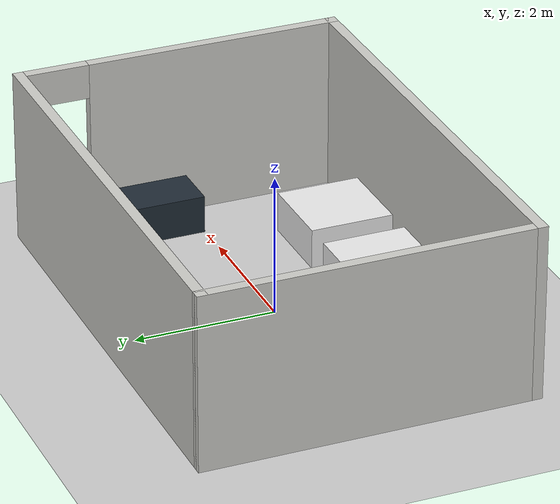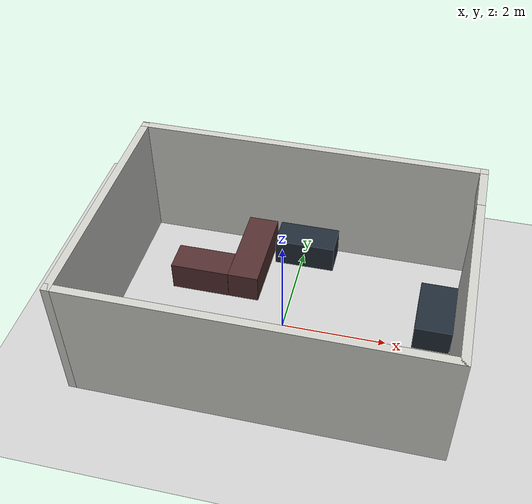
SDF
<sdf version="1.7">
 <world name="default">
  <light name="sun" type="directional">
   <pose>0 0 10 0 -0 0</pose>
   <diffuse>0.8 0.8 0.8 1</diffuse>
   <specular>0.2 0.2 0.2 1</specular>
   <attenuation>
    <range>1000</range>
    <constant>0.9</constant>
    <linear>0.01</linear>
    <quadratic>0.001</quadratic>
   </attenuation>
   <direction>-0.5 0.1 -0.9</direction>
   <spot><inner_angle>0</inner_angle><outer_angle>0</outer_angle><falloff>0</falloff></spot>
  </light>
  <model name="ground_plane">
   <static>1</static>
   <link name="link">
    <collision name="collision">
     <geometry><plane><normal>0 0 1</normal><size>100 100</size></plane></geometry>
     <surface><friction><ode><mu>100</mu><mu2>50</mu2></ode></friction></surface>
    </collision>
    <visual name="visual">
     <cast_shadows>0</cast_shadows>
     <geometry><plane><normal>0 0 1</normal><size>100 100</size></plane></geometry>
     <material>
      <script><uri>file://media/materials/scripts/gazebo.material</uri><name>Gazebo/Grey</name></script>
     </material>
    </visual>
   </link>
  </model>
  <gravity>0 0 -9.8</gravity>
  <magnetic_field>6e-06 2.3e-05 -4.2e-05</magnetic_field>
  <atmosphere type="adiabatic"/>
  <physics type="ode">
   <max_step_size>0.001</max_step_size>
   <real_time_factor>1</real_time_factor>
   <real_time_update_rate>1000</real_time_update_rate>
  </physics>
  <scene><ambient>0.4 0.4 0.4 1</ambient><background>0.7 0.7 0.7 1</background><shadows>1</shadows></scene>
  <audio><device>default</device></audio>
  <spherical_coordinates>
   <surface_model>EARTH_WGS84</surface_model>
   <latitude_deg>0</latitude_deg>
   <longitude_deg>0</longitude_deg>
   <elevation>0</elevation>
   <heading_deg>0</heading_deg>
  </spherical_coordinates>
  <model name="Lab_walls">
   <pose>-0.03036 0.6577 0 0 -0 0</pose>
   <link name="Wall_3">
    <collision name="Wall_3_Collision">
     <geometry><box><size>6.75 0.15 2.5</size></box></geometry>
     <pose>0 0 1.25 0 -0 0</pose>
    </collision>
    <visual name="Wall_3_Visual">
     <pose>0 0 1.25 0 -0 0</pose>
     <geometry><box><size>6.75 0.15 2.5</size></box></geometry>
     <material>
      <script><uri>file://media/materials/scripts/gazebo.material</uri><name>Gazebo/CeilingTiled</name></script>
      <ambient>1 1 1 1</ambient>
     </material>
     <meta><layer>0</layer></meta>
    </visual>
    <pose>-0 1.7225 0 0 -0 0</pose>
   </link>
   <link name="Wall_7">
    <pose>3.3 -0.5775 0 0 -0 -1.5708</pose>
    <visual name="Wall_7_Visual_0">
     <pose>-2.3005 0 1.25 0 -0 0</pose>
     <geometry><box><size>0.148992 0.15 2.5</size></box></geometry>
     <material>
      <script><uri>file://media/materials/scripts/gazebo.material</uri><name>Gazebo/CeilingTiled</name></script>
      <ambient>1 1 1 1</ambient>
     </material>
     <meta><layer>0</layer></meta>
    </visual>
    <collision name="Wall_7_Collision_0">
     <geometry><box><size>0.148992 0.15 2.5</size></box></geometry>
     <pose>-2.3005 0 1.25 0 -0 0</pose>
    </collision>
    <visual name="Wall_7_Visual_1">
     <pose>0.524496 0 1.25 0 -0 0</pose>
     <geometry><box><size>3.70101 0.15 2.5</size></box></geometry>
     <material>
      <script><uri>file://media/materials/scripts/gazebo.material</uri><name>Gazebo/CeilingTiled</name></script>
      <ambient>1 1 1 1</ambient>
     </material>
     <meta><layer>0</layer></meta>
    </visual>
    <collision name="Wall_7_Collision_1">
     <geometry><box><size>3.70101 0.15 2.5</size></box></geometry>
     <pose>0.524496 0 1.25 0 -0 0</pose>
    </collision>
    <visual name="Wall_7_Visual_2">
     <pose>-1.77601 0 2.25 0 -0 0</pose>
     <geometry><box><size>0.9 0.15 0.5</size></box></geometry>
     <material>
      <script><uri>file://media/materials/scripts/gazebo.material</uri><name>Gazebo/CeilingTiled</name></script>
      <ambient>1 1 1 1</ambient>
     </material>
     <meta><layer>0</layer></meta>
    </visual>
    <collision name="Wall_7_Collision_2">
     <geometry><box><size>0.9 0.15 0.5</size></box></geometry>
     <pose>-1.77601 0 2.25 0 -0 0</pose>
    </collision>
   </link>
   <link name="Wall_8">
    <collision name="Wall_8_Collision">
     <geometry><box><size>6.75 0.15 2.5</size></box></geometry>
     <pose>0 0 1.25 0 -0 0</pose>
    </collision>
    <visual name="Wall_8_Visual">
     <pose>0 0 1.25 0 -0 0</pose>
     <geometry><box><size>6.75 0.15 2.5</size></box></geometry>
     <material>
      <script><uri>file://media/materials/scripts/gazebo.material</uri><name>Gazebo/CeilingTiled</name></script>
      <ambient>1 1 1 1</ambient>
     </material>
     <meta><layer>0</layer></meta>
    </visual>
    <pose>-0 -2.8775 0 0 -0 3.14159</pose>
   </link>
   <link name="Wall_9">
    <collision name="Wall_9_Collision">
     <geometry><box><size>4.75 0.15 2.5</size></box></geometry>
     <pose>0 0 1.25 0 -0 0</pose>
    </collision>
    <visual name="Wall_9_Visual">
     <pose>0 0 1.25 0 -0 0</pose>
     <geometry><box><size>4.75 0.15 2.5</size></box></geometry>
     <material>
      <script><uri>file://media/materials/scripts/gazebo.material</uri><name>Gazebo/CeilingTiled</name></script>
      <ambient>1 1 1 1</ambient>
     </material>
     <meta><layer>0</layer></meta>
    </visual>
    <pose>-3.3 -0.5775 0 0 -0 1.5708</pose>
   </link>
   <static>1</static>
  </model>
  <model name="unit_box">
   <pose>2.82971 0.616669 0.274344 0 -0 0.000219</pose>
   <static>1</static>
   <link name="link">
    <inertial>
     <mass>1</mass>
     <inertia>
      <ixx>0.166667</ixx>
      <ixy>0</ixy>
      <ixz>0</ixz>
      <iyy>0.166667</iyy>
      <iyz>0</iyz>
      <izz>0.166667</izz>
     </inertia>
    </inertial>
    <collision name="collision"><geometry><box><size>0.7 1.2 0.548688</size></box></geometry></collision>
    <visual name="visual">
     <geometry><box><size>0.7 1.2 0.548688</size></box></geometry>
     <material>
      <ambient>0.124 0.169 0.211</ambient>
      <diffuse>0.124 0.169 0.211</diffuse>
      <specular>0.1 0.1 0.1 1.0</specular>
      <emissive>0.0 0.0 0.0 1.0</emissive>
      <texture><diffuse>file://media/materials/textures/flat_white.png</diffuse></texture>
     </material>
    </visual>
   </link>
  </model>
  <model name="unit_box_clone">
   <pose>1.54894 -1.538149 0.274344 0 -0 0.000219</pose>
   <static>1</static>
   <link name="link">
    <inertial>
     <mass>1</mass>
     <inertia>
      <ixx>0.166667</ixx>
      <ixy>0</ixy>
      <ixz>0</ixz>
      <iyy>0.166667</iyy>
      <iyz>0</iyz>
      <izz>0.166667</izz>
     </inertia>
    </inertial>
    <collision name="collision"><geometry><box><size>1.2 1.2 0.6</size></box></geometry></collision>
    <visual name="visual">
     <geometry><box><size>1.2 1.2 0.6</size></box></geometry>
     <material>
      <script><name>Gazebo/White</name><uri>file://media/materials/scripts/gazebo.material</uri></script>
     </material>
    </visual>
   </link>
  </model>
  <model name="unit_box_clone_clone">
   <static>1</static>
   <pose>-0.036658 -1.538149 0.274344 0 -0 0.000219</pose>
   <link name="link">
    <inertial>
     <mass>1</mass>
     <inertia>
      <ixx>0.166667</ixx>
      <ixy>0</ixy>
      <ixz>0</ixz>
      <iyy>0.166667</iyy>
      <iyz>0</iyz>
      <izz>0.166667</izz>
     </inertia>
    </inertial>
    <collision name="collision"><geometry><box><size>1.2 1.2 0.6</size></box></geometry></collision>
    <visual name="visual">
     <geometry><box><size>1.2 1.2 0.6</size></box></geometry>
     <material>
      <script><name>Gazebo/White</name><uri>file://media/materials/scripts/gazebo.material</uri></script>
     </material>
    </visual>
   </link>
  </model>
  <model name="unit_box_clone_0">
   <pose>-1.719810 -1.391033 0.274344 0 -0 0.000219</pose>
   <static>1</static>
   <link name="link">
    <inertial>
     <mass>1</mass>
     <inertia>
      <ixx>0.166667</ixx>
      <ixy>0</ixy>
      <ixz>0</ixz>
      <iyy>0.166667</iyy>
      <iyz>0</iyz>
      <izz>0.166667</izz>
     </inertia>
    </inertial>
    <collision name="collision"><geometry><box><size>0.65 1.5 0.6</size></box></geometry></collision>
    <visual name="visual">
     <geometry><box><size>0.65 1.5 0.6</size></box></geometry>
     <material>
      <ambient>0.124 0.169 0.211</ambient>
      <diffuse>0.124 0.169 0.211</diffuse>
      <specular>0.1 0.1 0.1 1.0</specular>
      <emissive>0.0 0.0 0.0 1.0</emissive>
     </material>
    </visual>
   </link>
  </model>
  <model name="unit_box_clone_0_clone">
   <pose>-0.922459 1.413571 0.274344 0 -0 0.000219</pose>
   <static>1</static>
   <link name="link">
    <inertial>
     <mass>1</mass>
     <inertia>
      <ixx>0.166667</ixx>
      <ixy>0</ixy>
      <ixz>0</ixz>
      <iyy>0.166667</iyy>
      <iyz>0</iyz>
      <izz>0.166667</izz>
     </inertia>
    </inertial>
    <collision name="collision"><geometry><box><size>0.6 1.75 0.6</size></box></geometry></collision>
    <visual name="visual">
     <geometry><box><size>0.6 1.75 0.6</size></box></geometry>
     <material>
      <ambient>0.321 0.180 0.184</ambient>
      <diffuse>0.321 0.180 0.184</diffuse>
      <specular>0.1 0.1 0.1 1.0</specular>
      <emissive>0.0 0.0 0.0 1.0</emissive>
     </material>
    </visual>
   </link>
  </model>
  <model name="unit_box_clone_0_clone_0">
   <pose>-1.798358 0.836945 0.274344 -0 -0 -1.57058</pose>
   <static>1</static>
   <link name="link">
    <inertial>
     <mass>1</mass>
     <inertia>
      <ixx>0.166667</ixx>
      <ixy>0</ixy>
      <ixz>0</ixz>
      <iyy>0.166667</iyy>
      <iyz>0</iyz>
      <izz>0.166667</izz>
     </inertia>
    </inertial>
    <collision name="collision"><geometry><box><size>0.6 1.15 0.6</size></box></geometry></collision>
    <visual name="visual">
     <geometry><box><size>0.6 1.15 0.6</size></box></geometry>
     <material>
      <ambient>0.321 0.180 0.184</ambient>
      <diffuse>0.321 0.180 0.184</diffuse>
      <specular>0.1 0.1 0.1 1.0</specular>
      <emissive>0.0 0.0 0.0 1.0</emissive>
     </material>
    </visual>
   </link>
  </model>
  <model name="unit_box_clone_0_clone_0_clone">
   <pose>-2.644961 -1.9209 0.274344 0 0 -1.57058</pose>
   <static>1</static>
   <link name="link">
    <inertial>
     <mass>1</mass>
     <inertia>
      <ixx>0.166667</ixx>
      <ixy>0</ixy>
      <ixz>0</ixz>
      <iyy>0.166667</iyy>
      <iyz>0</iyz>
      <izz>0.166667</izz>
     </inertia>
    </inertial>
    <collision name="collision"><geometry><box><size>0.6 1.2 0.6</size></box></geometry></collision>
    <visual name="visual">
     <geometry><box><size>0.6 1.2 0.6</size></box></geometry>
     <material>
      <ambient>0.124 0.169 0.211</ambient>
      <diffuse>0.124 0.169 0.211</diffuse>
      <specular>0.1 0.1 0.1 1.0</specular>
      <emissive>0.0 0.0 0.0 1.0</emissive>
     </material>
    </visual>
   </link>
  </model>
  <model name="unit_box_clone_0_clone_clone">
   <pose>0.060037 1.992125 0.274345 0 -0 1.5743</pose>
   <static>1</static>
   <link name="link">
    <inertial>
     <mass>1</mass>
     <inertia>
      <ixx>0.166667</ixx>
      <ixy>0</ixy>
      <ixz>0</ixz>
      <iyy>0.166667</iyy>
      <iyz>0</iyz>
      <izz>0.166667</izz>
     </inertia>
    </inertial>
    <collision name="collision"><geometry><box><size>0.6 1.2 0.6</size></box></geometry></collision>
    <visual name="visual">
     <geometry><box><size>0.6 1.2 0.6</size></box></geometry>
     <material>
      <ambient>0.124 0.169 0.211</ambient>
      <diffuse>0.124 0.169 0.211</diffuse>
      <specular>0.1 0.1 0.1 1.0</specular>
      <emissive>0.0 0.0 0.0 1.0</emissive>
      <texture><diffuse>file://media/materials/textures/flat_white.png</diffuse></texture>
     </material>
    </visual>
   </link>
  </model>
 </world>
</sdf>
